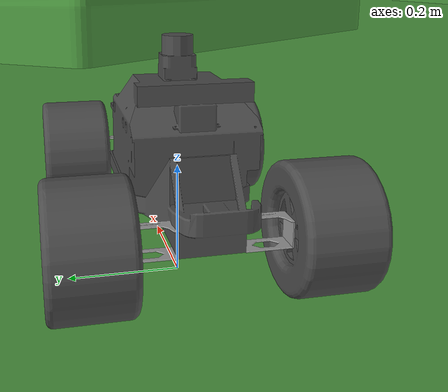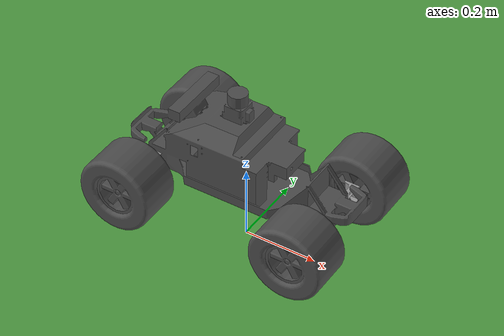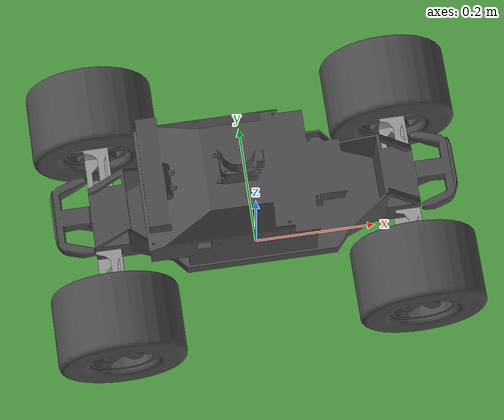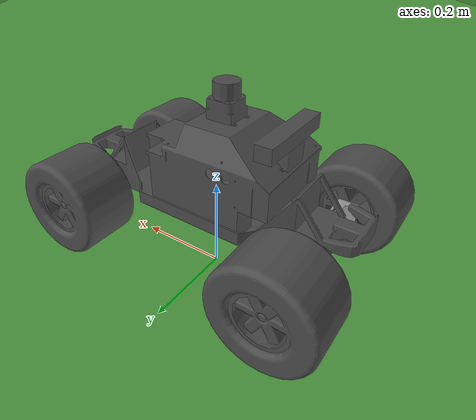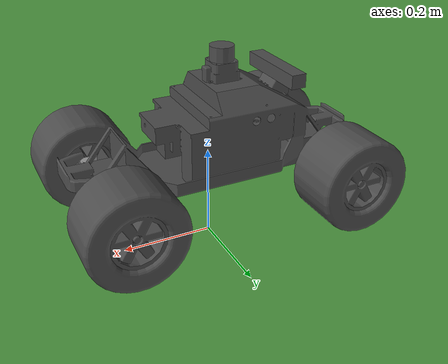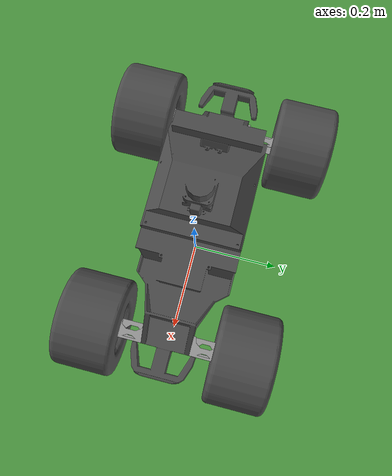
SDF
<!--Description: World file which includes the environment and  SDF robot-->
<!--Name: Shea Tanner-Cowie-->
<!--Email: st01129@surrey.ac.uk-->

<?xml version="1.0" ?>

<sdf version="1.5">
	<world name="robot_track">

    <include>
      <uri>model://sun</uri>
    </include>

<!--The robot-->
    <include>
      <pose>0 0 0.15 0 0 0</pose>
      <uri>/home/shea/robot_description_ws/src/agilityrobot_description/sdf/upgradedrobot</uri>
    </include>

<!--The track-->
   <include>
	  <static>true</static>
      <pose>0 0 0 0 0 0</pose>
      <uri>/home/shea/robot_description_ws/src/agilityrobot_description/sdf/8track</uri>

    </include>
	</world>
</sdf>

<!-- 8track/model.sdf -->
<sdf version='1.7'>
  <model name='8track'>
    <link name='link_0'>
     <!--physical-->
      <inertial>
        <mass>1</mass>
        <inertia>
          <ixx>0.166667</ixx>
          <ixy>0</ixy>
          <ixz>0</ixz>
          <iyy>0.166667</iyy>
          <iyz>0</iyz>
          <izz>0.166667</izz>
        </inertia>
        <pose>0 0 0 0 -0 0</pose>
      </inertial>
      <pose>0 0 0 0 -0 0</pose>
      <gravity>1</gravity>
      <self_collide>0</self_collide>
      <kinematic>0</kinematic>
      <enable_wind>0</enable_wind>
     <!--visual-->
      <visual name='visual'>
        <pose>0 0 0 0 -0 0</pose>
        <geometry>
          <mesh>
            <uri>/home/shea/adehome/CAD/tracks/8track.dae</uri>
            <scale>1 1 1</scale>
          </mesh>
        </geometry>
        <material>
          <lighting>1</lighting>
          <script>
            <uri>file://media/materials/scripts/gazebo.material</uri>
            <name>Gazebo/Grass</name>
          </script>
          <shader type='pixel'>
            <normal_map>__default__</normal_map>
          </shader>
          <ambient>0.3 0.3 0.3 1</ambient>
          <diffuse>0.7 0.7 0.7 1</diffuse>
          <specular>0.01 0.01 0.01 1</specular>
          <emissive>0 0 0 1</emissive>
        </material>
        <transparency>0</transparency>
        <cast_shadows>1</cast_shadows>
      </visual>
     <!--collision-->
      <collision name='collision'>
        <laser_retro>0</laser_retro>
        <max_contacts>10</max_contacts>
        <pose>0 0 0 0 -0 0</pose>
        <geometry>
          <mesh>
            <uri>/home/shea/adehome/CAD/tracks/8track.dae</uri>
            <scale>1 1 1</scale>
          </mesh>
        </geometry>
        <surface>
          <friction>
            <ode>
              <mu>80</mu>
              <mu2>50</mu2>
              <fdir1>0 0 0</fdir1>
              <slip1>0</slip1>
              <slip2>0</slip2>
            </ode>
            <torsional>
              <coefficient>1</coefficient>
              <patch_radius>0</patch_radius>
              <surface_radius>0</surface_radius>
              <use_patch_radius>1</use_patch_radius>
              <ode>
                <slip>0</slip>
              </ode>
            </torsional>
          </friction>
          <bounce>
            <restitution_coefficient>0</restitution_coefficient>
            <threshold>1e+06</threshold>
          </bounce>
          <contact>
            <collide_without_contact>0</collide_without_contact>
            <collide_without_contact_bitmask>1</collide_without_contact_bitmask>
            <collide_bitmask>1</collide_bitmask>
            <ode>
              <soft_cfm>0</soft_cfm>
              <soft_erp>0.2</soft_erp>
              <kp>1e+13</kp>
              <kd>1</kd>
              <max_vel>0.01</max_vel>
              <min_depth>0</min_depth>
            </ode>
            <bullet>
              <split_impulse>1</split_impulse>
              <split_impulse_penetration_threshold>-0.01</split_impulse_penetration_threshold>
              <soft_cfm>0</soft_cfm>
              <soft_erp>0.2</soft_erp>
              <kp>1e+13</kp>
              <kd>1</kd>
            </bullet>
          </contact>
        </surface>
      </collision>
    </link>
    <static>0</static>
    <allow_auto_disable>1</allow_auto_disable>
  </model>
</sdf>
